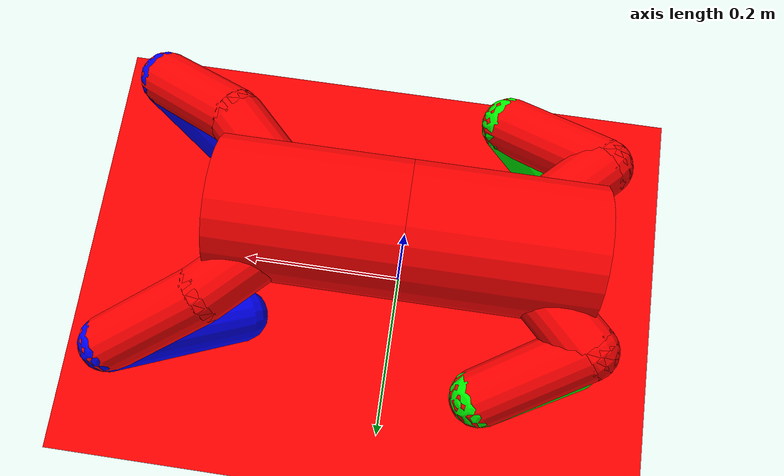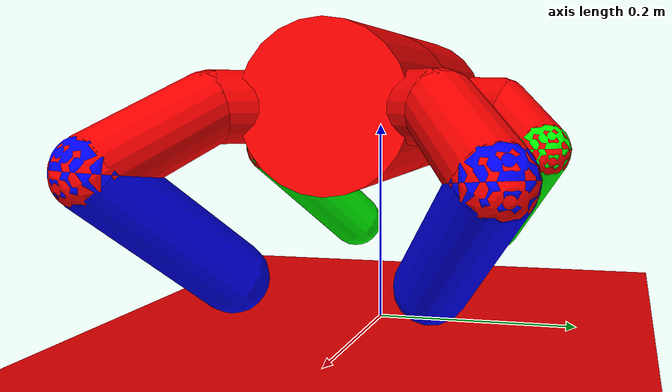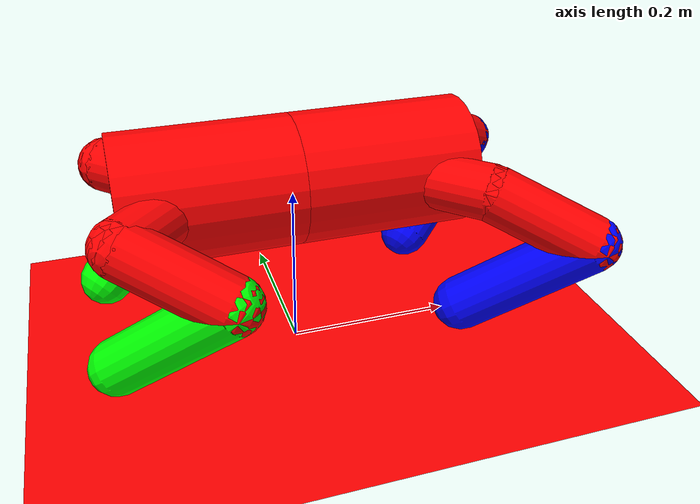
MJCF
<mujoco model="doggo">
    <option timestep="0.005"/>
    <size njmax="3000" nconmax="1000"/>
    <default>
        <joint limited="true" stiffness="0.01"/>
        <geom condim="6" size="0.032" rgba="1 0 0 1" type="capsule" density="5"/>
        <motor ctrllimited="true" ctrlrange="-1.0 1.0" gear=".0125"/>
        <site size="0.036" type="sphere" rgba="1 0 0 0"/>
    </default>
    <worldbody>
        <geom name="floor" size="5 5 0.1" type="plane" condim="6"/>
        <body name="robot" pos="0 0 0.22">
            <camera name="vision" pos=".125 0 .2" xyaxes="0 -1 0 .4 0 1" fovy="100"/>
            <site name="robot" pos="0 0 0"/>
            <geom name="robot" pos="0 0 0" size="0.075" fromto="0 0 0 .2 0 0" type="cylinder" density="0.5"/>
            <freejoint name="robot"/>

            <body name="leg_1" pos="0 0 0">
                <geom fromto=".1 0.0 0.0 0.2 0.1 0.0" name="aux_1"/>
                <body name="aux_1" pos="0.2 0.1 0">
                    <joint axis="0 0 1" name="hip_1_z" pos="0.0 0.0 0.0" range="-10 30" type="hinge" springref="0"/>
                    <joint axis="0 1 0" name="hip_1_y" pos="0.0 0.0 0.0" range="-75 15" type="hinge" springref="-10"/>
                    <geom fromto="0.0 0.0 0.0 0.098 0.0566 -.05" name="hip_1"/>
                    <body pos="0.098 0.0566 -.05">
                        <joint axis="-.5 .866 0" name="ankle_1" pos="0.0 0.0 0.0" range="-75 0" type="hinge"
                               springref="-20"/>
                        <geom fromto="0.0 0.0 0.0 -0.1176 -0.0679 -.1" name="ankle_1" rgba="0 0 1 1"/>
                        <site name="ankle_1a" pos="0 0 0"/>
                        <site name="ankle_1b" pos="-0.1176 -0.0679 -.1"/>
                    </body>
                </body>
            </body>
            <body name="leg_4" pos="0 0 0">
                <geom fromto=".1 0.0 0.0 0.2 -0.1 0.0" name="aux_4"/>
                <body name="aux_4" pos="0.2 -0.1 0">
                    <joint axis="0 0 -1" name="hip_4_z" pos="0.0 0.0 0.0" range="-10 30" type="hinge" springref="0"/>
                    <joint axis="0 1 0" name="hip_4_y" pos="0.0 0.0 0.0" range="-75 15" type="hinge" springref="-10"/>
                    <geom fromto="0.0 0.0 0.0 0.098 -0.0566 -.05" name="hip_4"/>
                    <body pos="0.098 -0.0566 -.05">
                        <joint axis=".5 .866 0" name="ankle_4" pos="0.0 0.0 0.0" range="-75 0" type="hinge"
                               springref="-20"/>
                        <geom fromto="0.0 0.0 0.0 -0.1176 0.0679 -.1" name="ankle_4" rgba="0 0 1 1"/>
                        <site name="ankle_4a" pos="0 0 0"/>
                        <site name="ankle_4b" pos="-0.1176 0.0679 -.1"/>
                    </body>
                </body>
            </body>

            <body name="rear" pos="0 0 0">
                <geom name="robot2" pos="0 0 0" size="0.075" fromto="-.2 0 0 0 0 0" type="cylinder" density="0.5"/>
                <joint axis="1 0 0" name="waist_x" pos="0 0 0" range="-30 30" type="hinge" springref="0"/>
                <body name="leg_2" pos="0 0 0">
                    <geom fromto="-.1 0.0 0.0 -0.2 0.1 0.0" name="aux_2"/>
                    <body name="aux_2" pos="-0.2 0.1 0">
                        <joint axis="0 0 1" name="hip_2_z" pos="0.0 0.0 0.0" range="-10 30" type="hinge" springref="0"/>
                        <joint axis="0 1 0" name="hip_2_y" pos="0.0 0.0 0.0" range="0 135" type="hinge" springref="0"/>
                        <geom fromto="0.0 0.0 0.0 0.098 0.0566 -.05" name="hip_2"/>
                        <body pos="0.098 0.0566 -.05">
                            <joint axis="-.5 .866 0" name="ankle_2" pos="0.0 0.0 0.0" range="-75 0" type="hinge"
                                   springref="-20"/>
                            <geom fromto="0.0 0.0 0.0 -0.1176 -0.0679 -.1" name="ankle_2" rgba="0 1 0 1"/>
                            <site name="ankle_2a" pos="0 0 0"/>
                            <site name="ankle_2b" pos="-0.1176 -0.0679 -.1"/>
                        </body>
                    </body>
                </body>
                <body name="leg_3" pos="0 0 0">
                    <geom fromto="-.1 0.0 0.0 -0.2 -0.1 0.0" name="aux_3"/>
                    <body name="aux_3" pos="-0.2 -0.1 0">
                        <joint axis="0 0 -1" name="hip_3_z" pos="0.0 0.0 0.0" range="-10 30" type="hinge"
                               springref="0"/>
                        <joint axis="0 1 0" name="hip_3_y" pos="0.0 0.0 0.0" range="0 135" type="hinge" springref="0"/>
                        <geom fromto="0.0 0.0 0.0 0.098 -0.0566 -.05" name="hip_3"/>
                        <body pos="0.098 -0.0566 -.05">
                            <joint axis=".5 .866 0" name="ankle_3" pos="0.0 0.0 0.0" range="-75 0" type="hinge"
                                   springref="-20"/>
                            <geom fromto="0.0 0.0 0.0 -0.1176 0.0679 -.1" name="ankle_3" rgba="0 1 0 1"/>
                            <site name="ankle_3a" pos="0 0 0"/>
                            <site name="ankle_3b" pos="-0.1176 0.0679 -.1"/>
                        </body>
                    </body>
                </body>
            </body>

        </body>
    </worldbody>
    <sensor>
        <touch site="ankle_1a" name="touch_ankle_1a"/>
        <touch site="ankle_1b" name="touch_ankle_1b"/>
        <touch site="ankle_2a" name="touch_ankle_2a"/>
        <touch site="ankle_2b" name="touch_ankle_2b"/>
        <touch site="ankle_3a" name="touch_ankle_3a"/>
        <touch site="ankle_3b" name="touch_ankle_3b"/>
        <touch site="ankle_4a" name="touch_ankle_4a"/>
        <touch site="ankle_4b" name="touch_ankle_4b"/>

        <jointpos joint="hip_1_z" name="jointpos_hip_1_z"/>
        <jointpos joint="hip_2_z" name="jointpos_hip_2_z"/>
        <jointpos joint="hip_3_z" name="jointpos_hip_3_z"/>
        <jointpos joint="hip_4_z" name="jointpos_hip_4_z"/>

        <jointpos joint="hip_1_y" name="jointpos_hip_1_y"/>
        <jointpos joint="hip_2_y" name="jointpos_hip_2_y"/>
        <jointpos joint="hip_3_y" name="jointpos_hip_3_y"/>
        <jointpos joint="hip_4_y" name="jointpos_hip_4_y"/>

        <jointpos joint="ankle_1" name="jointpos_ankle_1"/>
        <jointpos joint="ankle_2" name="jointpos_ankle_2"/>
        <jointpos joint="ankle_3" name="jointpos_ankle_3"/>
        <jointpos joint="ankle_4" name="jointpos_ankle_4"/>

        <jointvel joint="hip_1_z" name="jointvel_hip_1_z"/>
        <jointvel joint="hip_2_z" name="jointvel_hip_2_z"/>
        <jointvel joint="hip_3_z" name="jointvel_hip_3_z"/>
        <jointvel joint="hip_4_z" name="jointvel_hip_4_z"/>

        <jointvel joint="hip_1_y" name="jointvel_hip_1_y"/>
        <jointvel joint="hip_2_y" name="jointvel_hip_2_y"/>
        <jointvel joint="hip_3_y" name="jointvel_hip_3_y"/>
        <jointvel joint="hip_4_y" name="jointvel_hip_4_y"/>

        <jointvel joint="ankle_1" name="jointvel_ankle_1"/>
        <jointvel joint="ankle_2" name="jointvel_ankle_2"/>
        <jointvel joint="ankle_3" name="jointvel_ankle_3"/>
        <jointvel joint="ankle_4" name="jointvel_ankle_4"/>

        <!-- Used for observation -->
        <accelerometer site="robot" name="accelerometer"/>
        <velocimeter site="robot" name="velocimeter"/>
        <gyro site="robot" name="gyro"/>
        <magnetometer site="robot" name="magnetometer"/>

        <!-- Used for intrinsic constraints -->
        <subtreecom body="robot" name="subtreecom"/>
        <subtreelinvel body="robot" name="subtreelinvel"/>
        <subtreeangmom body="robot" name="subtreeangmom"/>
    </sensor>
    <actuator>
        <motor name="hip_1_z" joint="hip_1_z"/>
        <motor name="hip_2_z" joint="hip_2_z"/>
        <motor name="hip_3_z" joint="hip_3_z"/>
        <motor name="hip_4_z" joint="hip_4_z"/>
        <motor name="hip_1_y" joint="hip_1_y"/>
        <motor name="hip_2_y" joint="hip_2_y"/>
        <motor name="hip_3_y" joint="hip_3_y"/>
        <motor name="hip_4_y" joint="hip_4_y"/>
        <motor name="ankle_1" joint="ankle_1"/>
        <motor name="ankle_2" joint="ankle_2"/>
        <motor name="ankle_3" joint="ankle_3"/>
        <motor name="ankle_4" joint="ankle_4"/>
    </actuator>
</mujoco>
